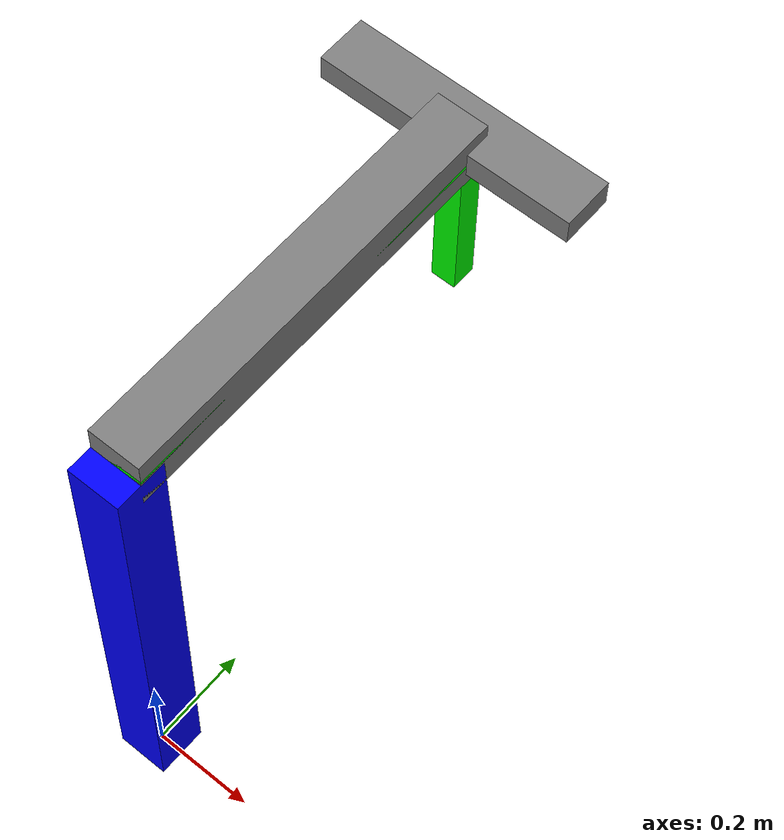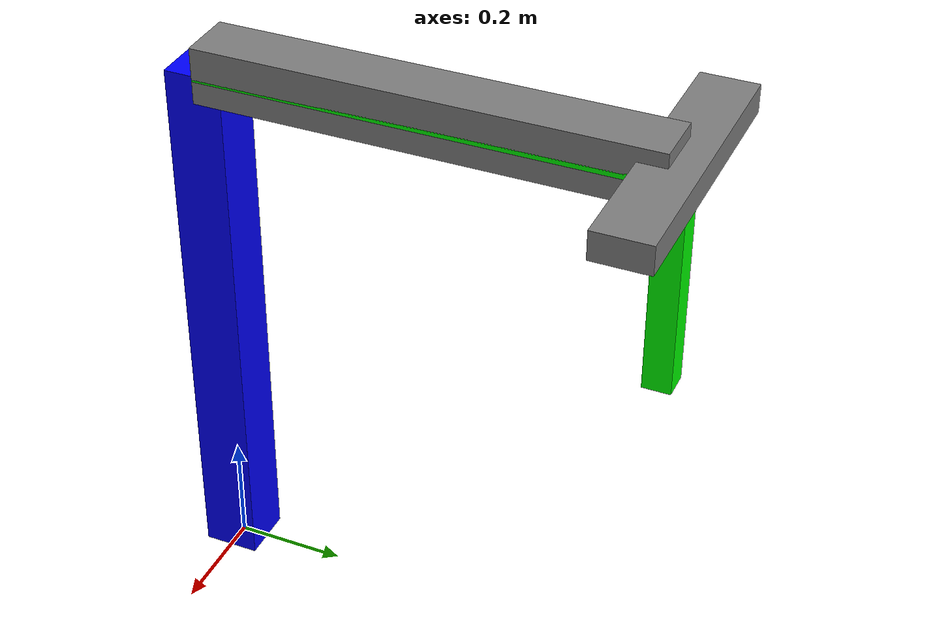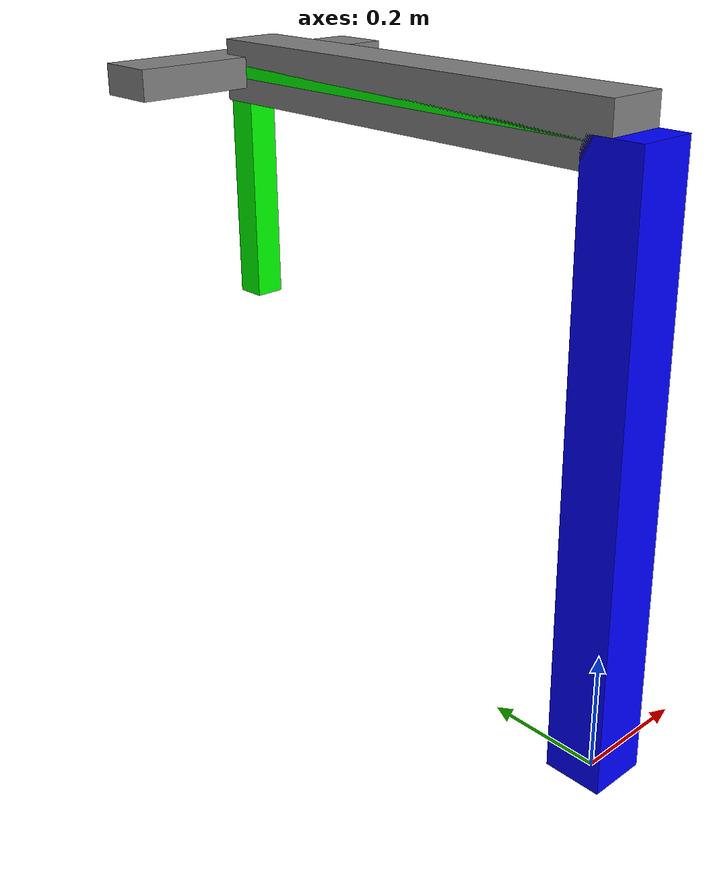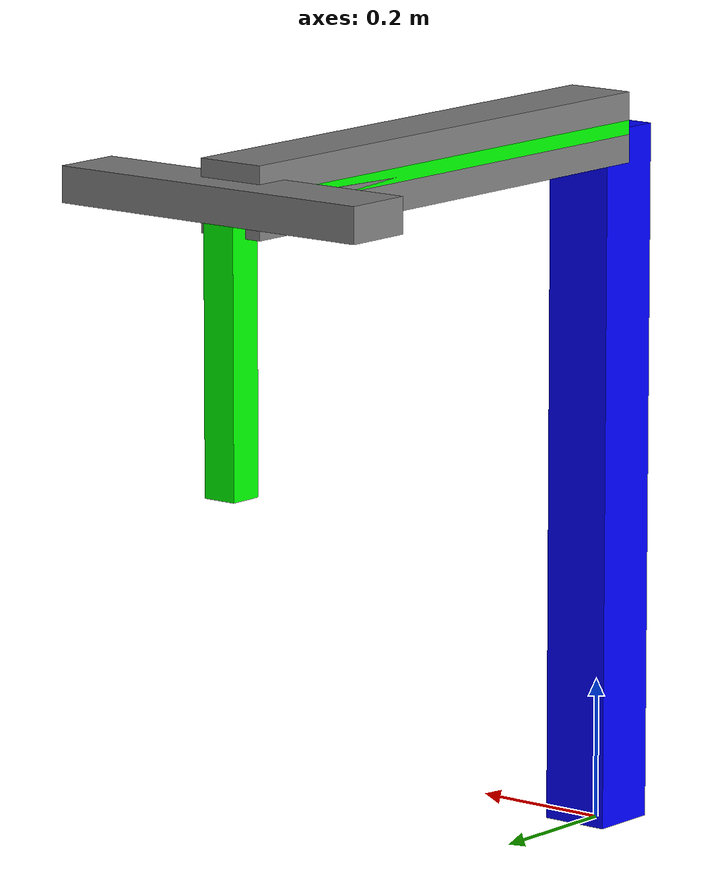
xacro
<?xml version="1.0"?>
<robot name="ppnc_robot" xmlns:xacro="http://www.ros.org/wiki/xacro">

  <xacro:property name="joint_z_limit" value="-0.4" />
  <xacro:property name="joint_z_rail_length" value="${0.0 - joint_z_limit}" />
  <xacro:property name="joint_z_rail_offset" value="${joint_z_limit / 2.0}" />

  <material name="blue">
    <color rgba="0 0 1 1"/>
  </material>
  <material name="green">
    <color rgba="0 1 0 1"/>
  </material>
  <material name="grey">
    <color rgba="0.5 0.5 0.5 1"/>
  </material>

  <link name="base_link">
    <visual>
      <origin xyz="0 0 0.5" rpy="0 0 0"/>
      <geometry>
        <box size="0.1 0.1 1.0"/>
      </geometry>
      <material name="blue"/>
    </visual>

    <visual>
      <origin xyz="0 0.4 1.0" rpy="0 0 0"/>
      <geometry>
        <box size="0.1 0.8 0.02"/>
      </geometry>
      <material name="green"/>
    </visual>

    <collision>
      <origin xyz="0 0 0.5" rpy="0 0 0"/>
      <geometry>
        <box size="0.1 0.1 1.0"/>
      </geometry>
    </collision>
    <inertial>
      <origin xyz="0 0 0.5" rpy="0 0 0"/>
      <mass value="1.0"/>
      <inertia ixx="0.0834" ixy="0.0" ixz="0.0" iyy="0.0834" iyz="0.0" izz="0.0001"/>
    </inertial>
  </link>

  <joint name="joint_y" type="prismatic">
    <parent link="base_link"/>
    <child link="link1"/>
    <origin xyz="0 0 1.0" rpy="0 0 0"/>
    <axis xyz="0 1 0"/>
    <limit lower="-0.4" upper="0.4" effort="10" velocity="1"/>
  </joint>

  <link name="link1">
    <visual>
      <origin xyz="0 0.4 0" rpy="0 0 0"/>
      <geometry>
        <box size="0.1 0.8 0.1"/>
      </geometry>
      <material name="grey"/>
    </visual>

    <visual>
      <origin xyz="0 0.8 ${joint_z_rail_offset}" rpy="0 0 0"/>
      <geometry>
        <box size="0.05 0.05 ${joint_z_rail_length}"/>
      </geometry>
      <material name="green"/>
    </visual>

    <collision>
      <origin xyz="0 0.4 0" rpy="0 0 0"/>
      <geometry>
        <box size="0.1 0.8 0.1"/>
      </geometry>
    </collision>
    <inertial>
      <origin xyz="0 0.4 0" rpy="0 0 0"/>
      <mass value="0.8"/>
      <inertia ixx="0.0065" ixy="0.0" ixz="0.0" iyy="0.0534" iyz="0.0" izz="0.0065"/>
    </inertial>
  </link>

  <joint name="joint_z" type="prismatic">
    <parent link="link1"/>
    <child link="link2"/>
    <origin xyz="0 0.8 0" rpy="0 0 0"/>
    <axis xyz="0 0 1"/>
    <limit lower="${joint_z_limit}" upper="0.0" effort="10" velocity="1"/>
  </joint>

  <link name="link2">
    <visual>
      <origin xyz="0 0 0" rpy="0 0 0"/>
      <geometry>
        <box size="0.5 0.1 0.05"/>
      </geometry>
      <material name="grey"/>
    </visual>
    <collision>
      <origin xyz="0 0 0" rpy="0 0 0"/>
      <geometry>
        <box size="0.5 0.1 0.05"/>
      </geometry>
    </collision>
    <inertial>
      <origin xyz="0 0 0" rpy="0 0 0"/>
      <mass value="0.0025"/>
      <inertia ixx="0.0000026" ixy="0.0" ixz="0.0" iyy="0.000052" iyz="0.0" izz="0.000054"/>
    </inertial>
  </link>

</robot>
